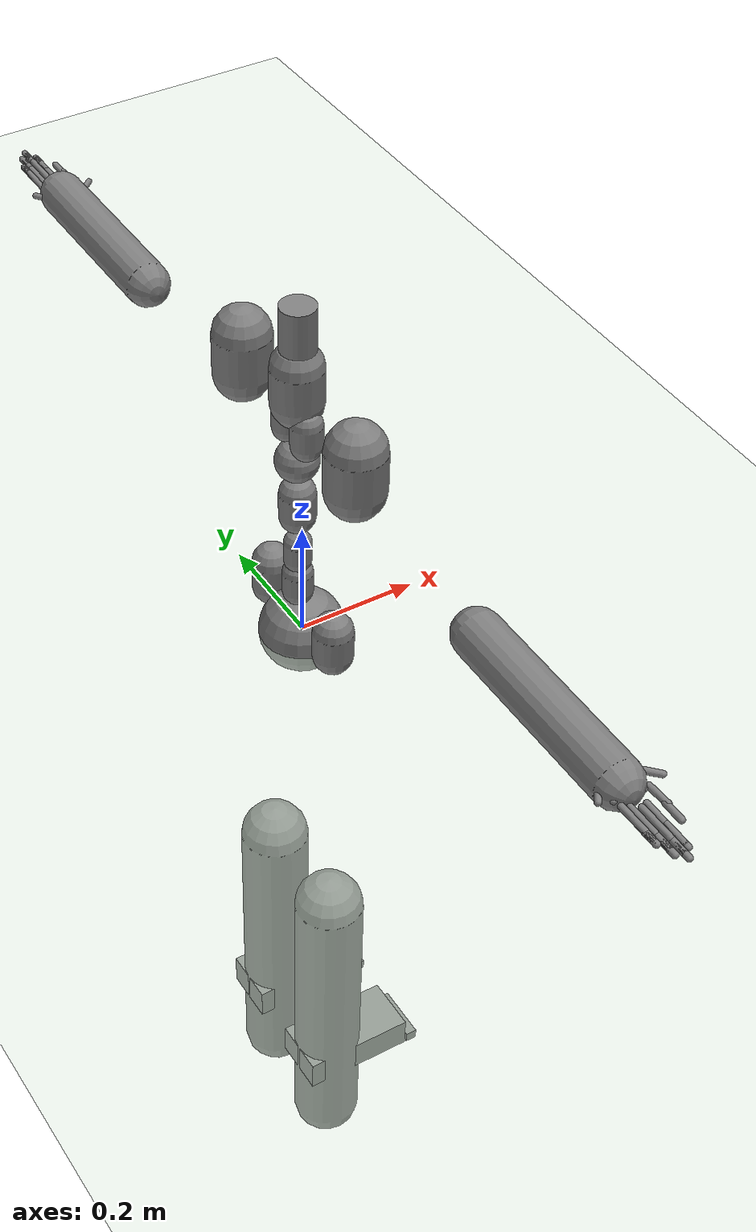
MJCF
<?xml version="1.0" ?>
<mujoco model="humanoid">
  <compiler coordinate="local"/>
  <statistic extent="2" center="0 0 1"/>
  <option timestep="0.00555"/>
  <default>
    <motor ctrlrange="-1 1" ctrllimited="true"/>
    <geom type="capsule" condim="1" friction="1.0 0.05 0.05" solimp=".9 .99 .003" solref=".015 1"/>
    <joint type="hinge" damping="0.1" stiffness="5" armature=".007" limited="true" solimplimit="0 .99 .01"/>
    <site size=".04" group="3"/>
  </default>
  <asset>
    <texture type="skybox" builtin="gradient" rgb1=".4 .5 .6" rgb2="0 0 0" width="100" height="100"/>
    <texture builtin="flat" height="1278" mark="cross" markrgb="1 1 1" name="texgeom" random="0.01" rgb1="0.8 0.6 0.4" rgb2="0.8 0.6 0.4" type="cube" width="127"/>
    <texture builtin="checker" height="100" name="texplane" rgb1="0 0 0" rgb2="0.8 0.8 0.8" type="2d" width="100"/>
    <material name="MatPlane" reflectance="0.5" shininess="1" specular="1" texrepeat="60 60" texture="texplane"/>
    <material name="geom" texture="texgeom" texuniform="true"/>
  </asset>
  <worldbody>
    <light cutoff="100" diffuse="1 1 1" dir="-0 0 -1.3" directional="true" exponent="1" pos="0 0 1.3" specular=".1 .1 .1"/>
    <geom conaffinity="1" condim="3" name="floor" pos="0 0 0" rgba="0.8 0.9 0.8 1" size="100 100 .2" type="plane" material="MatPlane"/>
    <body name="pHipOrigin" pos="0 0 0">
      <freejoint name="pHipOrigin"/>
      <geom type="sphere" contype="1" conaffinity="1" density="4629.6296296296305" size="0.06922" pos="0.0000 0.0000 -0.0000"/>
      <body name="jL5S1" pos="-0.00780013 0 0.07020100">
        <geom type="capsule" contype="1" conaffinity="1" density="1000" fromto="0 0 0.01413 0 0 0.04944" size="0.02472"/>
        <joint name="jL5S1_x" type="hinge" pos="0 0 0" axis="1 0 0" stiffness="500" damping="500" armature="0.02" range="-180.0000 180.0000"/>
        <joint name="jL5S1_y" type="hinge" pos="0 0 0" axis="0 1 0" stiffness="500" damping="500" armature="0.02" range="-180.0000 180.0000"/>
        <joint name="jL5S1_z" type="hinge" pos="0 0 0" axis="0 0 1" stiffness="500" damping="500" armature="0.02" range="-180.0000 180.0000"/>
        <body name="jL4L3" pos="0 0 0.06388980">
          <geom type="capsule" contype="1" conaffinity="1" density="1000" fromto="0 0 0.01278 0 0 0.04472" size="0.02236"/>
          <joint name="jL4L3_x" type="hinge" pos="0 0 0" axis="1 0 0" stiffness="500" damping="500" armature="0.02" range="-180.0000 180.0000"/>
          <joint name="jL4L3_y" type="hinge" pos="0 0 0" axis="0 1 0" stiffness="500" damping="500" armature="0.02" range="-180.0000 180.0000"/>
          <joint name="jL4L3_z" type="hinge" pos="0 0 0" axis="0 0 1" stiffness="500" damping="500" armature="0.02" range="-180.0000 180.0000"/>
          <body name="jL1T12" pos="-0.00063881 0 0.08280111">
            <geom type="capsule" contype="1" conaffinity="1" density="1000" fromto="0 0 0.01656 0 0 0.05796" size="0.02898"/>
            <joint name="jL1T12_x" type="hinge" pos="0 0 0" axis="1 0 0" stiffness="500" damping="500" armature="0.02" range="-180.0000 180.0000"/>
            <joint name="jL1T12_y" type="hinge" pos="0 0 0" axis="0 1 0" stiffness="500" damping="500" armature="0.02" range="-180.0000 180.0000"/>
            <joint name="jL1T12_z" type="hinge" pos="0 0 0" axis="0 0 1" stiffness="500" damping="500" armature="0.02" range="-180.0000 180.0000"/>
            <body name="jT9T8" pos="-0.00066638 0 0.08620707">
              <geom type="sphere" contype="1" conaffinity="1" density="1000" size="0.03448" pos="0.000 0.0000 0.034484"/>
              <joint name="jT9T8_x" type="hinge" pos="0 0 0" axis="1 0 0" stiffness="500" damping="500" armature="0.02" range="-180.0000 180.0000"/>
              <joint name="jT9T8_y" type="hinge" pos="0 0 0" axis="0 1 0" stiffness="500" damping="500" armature="0.02" range="-180.0000 180.0000"/>
              <joint name="jT9T8_z" type="hinge" pos="0 0 0" axis="0 0 1" stiffness="500" damping="500" armature="0.02" range="-180.0000 180.0000"/>
              <body name="jT1C7" pos="0 0 0.11753398">
                <geom type="capsule" contype="1" conaffinity="1" density="1000" fromto="0 0 0.02351 0 0 0.08227" size="0.04114"/>
                <joint name="jT1C7_x" type="hinge" pos="0 0 0" axis="1 0 0" stiffness="500" damping="500" armature="0.02" range="-180.0000 180.0000"/>
                <joint name="jT1C7_y" type="hinge" pos="0 0 0" axis="0 1 0" stiffness="500" damping="500" armature="0.02" range="-180.0000 180.0000"/>
                <joint name="jT1C7_z" type="hinge" pos="0 0 0" axis="0 0 1" stiffness="500" damping="500" armature="0.02" range="-180.0000 180.0000"/>
                <body name="jC1Head" pos="0.00109452 0 0.09277466">
                  <geom type="cylinder" contype="1" conaffinity="1" density="1000" fromto="0 0 0 0 0 0.09278" size="0.02783"/>
                  <joint name="jC1Head_x" type="hinge" pos="0 0 0" axis="1 0 0" stiffness="500" damping="500" armature="0.02" range="-180.0000 180.0000"/>
                  <joint name="jC1Head_y" type="hinge" pos="0 0 0" axis="0 1 0" stiffness="500" damping="500" armature="0.02" range="-180.0000 180.0000"/>
                  <joint name="jC1Head_z" type="hinge" pos="0 0 0" axis="0 0 1" stiffness="500" damping="500" armature="0.02" range="-180.0000 180.0000"/>
                </body>
              </body>
              <body name="jRightT4Shoulder" pos="0 -0.02712158 0.06612837">
                <geom type="capsule" contype="1" conaffinity="1" density="1000" fromto="0 0 0.01429 0 0 0.05003" size="0.02502"/>
                <joint name="jRightT4Shoulder_x" type="hinge" pos="0 0 0" axis="1 0 0" stiffness="500" damping="500" armature="0.02" range="-180.0000 180.0000"/>
                <joint name="jRightT4Shoulder_y" type="hinge" pos="0 0 0" axis="0 1 0" stiffness="500" damping="500" armature="0.02" range="-180.0000 180.0000"/>
                <joint name="jRightT4Shoulder_z" type="hinge" pos="0 0 0" axis="0 0 1" stiffness="500" damping="500" armature="0.02" range="-180.0000 180.0000"/>
                <body name="jRightShoulder" pos="0 -0.13383517 0">
                  <geom type="capsule" contype="1" conaffinity="1" density="1000" fromto="0 0 0.02677 0 0 0.09368" size="0.04684"/>
                  <joint name="jRightShoulder_x" type="hinge" pos="0 0 0" axis="1 0 0" stiffness="500" damping="500" armature="0.02" range="-180.0000 180.0000"/>
                  <joint name="jRightShoulder_y" type="hinge" pos="0 0 0" axis="0 1 0" stiffness="500" damping="500" armature="0.02" range="-180.0000 180.0000"/>
                  <joint name="jRightShoulder_z" type="hinge" pos="0 0 0" axis="0 0 1" stiffness="500" damping="500" armature="0.02" range="-180.0000 180.0000"/>
                  <body name="jRightElbow" pos="0 -0.30855584 0">
                    <geom type="capsule" contype="1" conaffinity="1" density="1000" fromto="0 0 0 0.00000000 -0.30855584 0.00000000" size="0.03703"/>
                    <joint name="jRightElbow_x" type="hinge" pos="0 0 0" axis="1 0 0" stiffness="500" damping="500" armature="0.02" range="-180.0000 180.0000"/>
                    <joint name="jRightElbow_y" type="hinge" pos="0 0 0" axis="0 1 0" stiffness="500" damping="500" armature="0.02" range="-180.0000 180.0000"/>
                    <joint name="jRightElbow_z" type="hinge" pos="0 0 0" axis="0 0 1" stiffness="500" damping="500" armature="0.02" range="-180.0000 180.0000"/>
                    <body name="jRightWrist" pos="0.00010793 -0.26817301 0">
                      <geom density="1000" type="box" pos="0 0 0" size="0.035 0.03 0.01" quat="1.0000 0.0000 0.0000 0.0000"/>
                      <joint name="jRightWrist_x" type="hinge" pos="0 0 0" axis="1 0 0" stiffness="500" damping="500" armature="0.02" range="-180.0000 180.0000"/>
                      <joint name="jRightWrist_y" type="hinge" pos="0 0 0" axis="0 1 0" stiffness="500" damping="500" armature="0.02" range="-180.0000 180.0000"/>
                      <joint name="jRightWrist_z" type="hinge" pos="0 0 0" axis="0 0 1" stiffness="500" damping="500" armature="0.02" range="-180.0000 180.0000"/>
                      <body name="jRightFirstCMC" pos="0.02927731 -0.02806394 -0.00132586">
                        <geom type="capsule" contype="1" conaffinity="1" density="1000" fromto="0 0 0 0.02927731 -0.02806394 -0.00132586" size="0.005"/>
                        <joint name="jRightFirstCMC_x" type="hinge" pos="0 0 0" axis="1 0 0" stiffness="500" damping="500" armature="0.02" range="-180.0000 180.0000"/>
                        <joint name="jRightFirstCMC_y" type="hinge" pos="0 0 0" axis="0 1 0" stiffness="500" damping="500" armature="0.02" range="-180.0000 180.0000"/>
                        <joint name="jRightFirstCMC_z" type="hinge" pos="0 0 0" axis="0 0 1" stiffness="500" damping="500" armature="0.02" range="-180.0000 180.0000"/>
                        <body name="jRightFirstMCP" pos="0.00130909 -0.03694161 0.00078057">
                          <geom type="capsule" contype="1" conaffinity="1" density="1000" fromto="0 0 0 0.00130909 -0.03694161 0.00078057" size="0.005"/>
                          <joint name="jRightFirstMCP_x" type="hinge" pos="0 0 0" axis="1 0 0" stiffness="500" damping="500" armature="0.02" range="-180.0000 180.0000"/>
                          <joint name="jRightFirstMCP_y" type="hinge" pos="0 0 0" axis="0 1 0" stiffness="500" damping="500" armature="0.02" range="-180.0000 180.0000"/>
                          <joint name="jRightFirstMCP_z" type="hinge" pos="0 0 0" axis="0 0 1" stiffness="500" damping="500" armature="0.02" range="-180.0000 180.0000"/>
                          <body name="jRightIP" pos="0 -0.03251442 0">
                            <geom type="capsule" contype="1" conaffinity="1" density="1000" fromto="0 0 0 0.00000000 -0.03251442 0.00000000" size="0.005"/>
                            <joint name="jRightIP_x" type="hinge" pos="0 0 0" axis="1 0 0" stiffness="500" damping="500" armature="0.02" range="-180.0000 180.0000"/>
                            <joint name="jRightIP_y" type="hinge" pos="0 0 0" axis="0 1 0" stiffness="500" damping="500" armature="0.02" range="-180.0000 180.0000"/>
                            <joint name="jRightIP_z" type="hinge" pos="0 0 0" axis="0 0 1" stiffness="500" damping="500" armature="0.02" range="-180.0000 180.0000"/>
                          </body>
                        </body>
                      </body>
                      <body name="jRightSecondCMC" pos="0.01114787 -0.03257055 -0.00056811">
                        <geom type="capsule" contype="1" conaffinity="1" density="1000" fromto="0 0 0 0.01114787 -0.03257055 -0.00056811" size="0.005"/>
                        <joint name="jRightSecondCMC_x" type="hinge" pos="0 0 0" axis="1 0 0" stiffness="500" damping="500" armature="0.02" range="-180.0000 180.0000"/>
                        <joint name="jRightSecondCMC_y" type="hinge" pos="0 0 0" axis="0 1 0" stiffness="500" damping="500" armature="0.02" range="-180.0000 180.0000"/>
                        <joint name="jRightSecondCMC_z" type="hinge" pos="0 0 0" axis="0 0 1" stiffness="500" damping="500" armature="0.02" range="-180.0000 180.0000"/>
                        <body name="jRightSecondMCP" pos="-0.00033952 -0.05415028 -0.00056172">
                          <geom type="capsule" contype="1" conaffinity="1" density="1000" fromto="0 0 0 -0.00033952 -0.05415028 -0.00056172" size="0.005"/>
                          <joint name="jRightSecondMCP_x" type="hinge" pos="0 0 0" axis="1 0 0" stiffness="500" damping="500" armature="0.02" range="-180.0000 180.0000"/>
                          <joint name="jRightSecondMCP_y" type="hinge" pos="0 0 0" axis="0 1 0" stiffness="500" damping="500" armature="0.02" range="-180.0000 180.0000"/>
                          <joint name="jRightSecondMCP_z" type="hinge" pos="0 0 0" axis="0 0 1" stiffness="500" damping="500" armature="0.02" range="-180.0000 180.0000"/>
                          <body name="jRightSecondPIP" pos="0 -0.03915551 0">
                            <geom type="capsule" contype="1" conaffinity="1" density="1000" fromto="0 0 0 0.00000000 -0.03915551 0.00000000" size="0.005"/>
                            <joint name="jRightSecondPIP_x" type="hinge" pos="0 0 0" axis="1 0 0" stiffness="500" damping="500" armature="0.02" range="-180.0000 180.0000"/>
                            <joint name="jRightSecondPIP_y" type="hinge" pos="0 0 0" axis="0 1 0" stiffness="500" damping="500" armature="0.02" range="-180.0000 180.0000"/>
                            <joint name="jRightSecondPIP_z" type="hinge" pos="0 0 0" axis="0 0 1" stiffness="500" damping="500" armature="0.02" range="-180.0000 180.0000"/>
                            <body name="jRightSecondDIP" pos="0 -0.02137059 0">
                              <geom type="capsule" contype="1" conaffinity="1" density="1000" fromto="0 0 0 0.00000000 -0.02137059 0.00000000" size="0.005"/>
                              <joint name="jRightSecondDIP_x" type="hinge" pos="0 0 0" axis="1 0 0" stiffness="500" damping="500" armature="0.02" range="-180.0000 180.0000"/>
                              <joint name="jRightSecondDIP_y" type="hinge" pos="0 0 0" axis="0 1 0" stiffness="500" damping="500" armature="0.02" range="-180.0000 180.0000"/>
                              <joint name="jRightSecondDIP_z" type="hinge" pos="0 0 0" axis="0 0 1" stiffness="500" damping="500" armature="0.02" range="-180.0000 180.0000"/>
                            </body>
                          </body>
                        </body>
                      </body>
                      <body name="jRightThirdCMC" pos="-0.00063303 -0.03423302 0.00143921">
                        <geom type="capsule" contype="1" conaffinity="1" density="1000" fromto="0 0 0 -0.00063303 -0.03423302 0.00143921" size="0.005"/>
                        <joint name="jRightThirdCMC_x" type="hinge" pos="0 0 0" axis="1 0 0" stiffness="500" damping="500" armature="0.02" range="-180.0000 180.0000"/>
                        <joint name="jRightThirdCMC_y" type="hinge" pos="0 0 0" axis="0 1 0" stiffness="500" damping="500" armature="0.02" range="-180.0000 180.0000"/>
                        <joint name="jRightThirdCMC_z" type="hinge" pos="0 0 0" axis="0 0 1" stiffness="500" damping="500" armature="0.02" range="-180.0000 180.0000"/>
                        <body name="jRightThirdMCP" pos="-0.00069765 -0.05780011 0.00157252">
                          <geom type="capsule" contype="1" conaffinity="1" density="1000" fromto="0 0 0 -0.00069765 -0.05780011 0.00157252" size="0.005"/>
                          <joint name="jRightThirdMCP_x" type="hinge" pos="0 0 0" axis="1 0 0" stiffness="500" damping="500" armature="0.02" range="-180.0000 180.0000"/>
                          <joint name="jRightThirdMCP_y" type="hinge" pos="0 0 0" axis="0 1 0" stiffness="500" damping="500" armature="0.02" range="-180.0000 180.0000"/>
                          <joint name="jRightThirdMCP_z" type="hinge" pos="0 0 0" axis="0 0 1" stiffness="500" damping="500" armature="0.02" range="-180.0000 180.0000"/>
                          <body name="jRightThirdPIP" pos="0 -0.04292496 0">
                            <geom type="capsule" contype="1" conaffinity="1" density="1000" fromto="0 0 0 0.00000000 -0.04292496 0.00000000" size="0.005"/>
                            <joint name="jRightThirdPIP_x" type="hinge" pos="0 0 0" axis="1 0 0" stiffness="500" damping="500" armature="0.02" range="-180.0000 180.0000"/>
                            <joint name="jRightThirdPIP_y" type="hinge" pos="0 0 0" axis="0 1 0" stiffness="500" damping="500" armature="0.02" range="-180.0000 180.0000"/>
                            <joint name="jRightThirdPIP_z" type="hinge" pos="0 0 0" axis="0 0 1" stiffness="500" damping="500" armature="0.02" range="-180.0000 180.0000"/>
                            <body name="jRightThirdDIP" pos="0 -0.02522658 0">
                              <geom type="capsule" contype="1" conaffinity="1" density="1000" fromto="0 0 0 0.00000000 -0.02522658 0.00000000" size="0.005"/>
                              <joint name="jRightThirdDIP_x" type="hinge" pos="0 0 0" axis="1 0 0" stiffness="500" damping="500" armature="0.02" range="-180.0000 180.0000"/>
                              <joint name="jRightThirdDIP_y" type="hinge" pos="0 0 0" axis="0 1 0" stiffness="500" damping="500" armature="0.02" range="-180.0000 180.0000"/>
                              <joint name="jRightThirdDIP_z" type="hinge" pos="0 0 0" axis="0 0 1" stiffness="500" damping="500" armature="0.02" range="-180.0000 180.0000"/>
                            </body>
                          </body>
                        </body>
                      </body>
                      <body name="jRightFourthCMC" pos="-0.01163399 -0.03240258 0.00076271">
                        <geom type="capsule" contype="1" conaffinity="1" density="1000" fromto="0 0 0 -0.01163399 -0.03240258 0.00076271" size="0.005"/>
                        <joint name="jRightFourthCMC_x" type="hinge" pos="0 0 0" axis="1 0 0" stiffness="500" damping="500" armature="0.02" range="-180.0000 180.0000"/>
                        <joint name="jRightFourthCMC_y" type="hinge" pos="0 0 0" axis="0 1 0" stiffness="500" damping="500" armature="0.02" range="-180.0000 180.0000"/>
                        <joint name="jRightFourthCMC_z" type="hinge" pos="0 0 0" axis="0 0 1" stiffness="500" damping="500" armature="0.02" range="-180.0000 180.0000"/>
                        <body name="jRightFourthMCP" pos="-0.00037114 -0.05086904 0.00079919">
                          <geom type="capsule" contype="1" conaffinity="1" density="1000" fromto="0 0 0 -0.00037114 -0.05086904 0.00079919" size="0.005"/>
                          <joint name="jRightFourthMCP_x" type="hinge" pos="0 0 0" axis="1 0 0" stiffness="500" damping="500" armature="0.02" range="-180.0000 180.0000"/>
                          <joint name="jRightFourthMCP_y" type="hinge" pos="0 0 0" axis="0 1 0" stiffness="500" damping="500" armature="0.02" range="-180.0000 180.0000"/>
                          <joint name="jRightFourthMCP_z" type="hinge" pos="0 0 0" axis="0 0 1" stiffness="500" damping="500" armature="0.02" range="-180.0000 180.0000"/>
                          <body name="jRightFourthPIP" pos="0 -0.04062925 0">
                            <geom type="capsule" contype="1" conaffinity="1" density="1000" fromto="0 0 0 0.00000000 -0.04062925 0.00000000" size="0.005"/>
                            <joint name="jRightFourthPIP_x" type="hinge" pos="0 0 0" axis="1 0 0" stiffness="500" damping="500" armature="0.02" range="-180.0000 180.0000"/>
                            <joint name="jRightFourthPIP_y" type="hinge" pos="0 0 0" axis="0 1 0" stiffness="500" damping="500" armature="0.02" range="-180.0000 180.0000"/>
                            <joint name="jRightFourthPIP_z" type="hinge" pos="0 0 0" axis="0 0 1" stiffness="500" damping="500" armature="0.02" range="-180.0000 180.0000"/>
                            <body name="jRightFourthDIP" pos="0 -0.02411579 0">
                              <geom type="capsule" contype="1" conaffinity="1" density="1000" fromto="0 0 0 0.00000000 -0.02411579 0.00000000" size="0.005"/>
                              <joint name="jRightFourthDIP_x" type="hinge" pos="0 0 0" axis="1 0 0" stiffness="500" damping="500" armature="0.02" range="-180.0000 180.0000"/>
                              <joint name="jRightFourthDIP_y" type="hinge" pos="0 0 0" axis="0 1 0" stiffness="500" damping="500" armature="0.02" range="-180.0000 180.0000"/>
                              <joint name="jRightFourthDIP_z" type="hinge" pos="0 0 0" axis="0 0 1" stiffness="500" damping="500" armature="0.02" range="-180.0000 180.0000"/>
                            </body>
                          </body>
                        </body>
                      </body>
                      <body name="jRightFifthCMC" pos="-0.02044995 -0.02849467 0.00056211">
                        <geom type="capsule" contype="1" conaffinity="1" density="1000" fromto="0 0 0 -0.02044995 -0.02849467 0.00056211" size="0.005"/>
                        <joint name="jRightFifthCMC_x" type="hinge" pos="0 0 0" axis="1 0 0" stiffness="500" damping="500" armature="0.02" range="-180.0000 180.0000"/>
                        <joint name="jRightFifthCMC_y" type="hinge" pos="0 0 0" axis="0 1 0" stiffness="500" damping="500" armature="0.02" range="-180.0000 180.0000"/>
                        <joint name="jRightFifthCMC_z" type="hinge" pos="0 0 0" axis="0 0 1" stiffness="500" damping="500" armature="0.02" range="-180.0000 180.0000"/>
                        <body name="jRightFifthMCP" pos="-0.00000714 -0.04834211 0.00066525">
                          <geom type="capsule" contype="1" conaffinity="1" density="1000" fromto="0 0 0 -0.00000714 -0.04834211 0.00066525" size="0.005"/>
                          <joint name="jRightFifthMCP_x" type="hinge" pos="0 0 0" axis="1 0 0" stiffness="500" damping="500" armature="0.02" range="-180.0000 180.0000"/>
                          <joint name="jRightFifthMCP_y" type="hinge" pos="0 0 0" axis="0 1 0" stiffness="500" damping="500" armature="0.02" range="-180.0000 180.0000"/>
                          <joint name="jRightFifthMCP_z" type="hinge" pos="0 0 0" axis="0 0 1" stiffness="500" damping="500" armature="0.02" range="-180.0000 180.0000"/>
                          <body name="jRightFifthPIP" pos="0 -0.03394297 0">
                            <geom type="capsule" contype="1" conaffinity="1" density="1000" fromto="0 0 0 0.00000000 -0.03394297 0.00000000" size="0.005"/>
                            <joint name="jRightFifthPIP_x" type="hinge" pos="0 0 0" axis="1 0 0" stiffness="500" damping="500" armature="0.02" range="-180.0000 180.0000"/>
                            <joint name="jRightFifthPIP_y" type="hinge" pos="0 0 0" axis="0 1 0" stiffness="500" damping="500" armature="0.02" range="-180.0000 180.0000"/>
                            <joint name="jRightFifthPIP_z" type="hinge" pos="0 0 0" axis="0 0 1" stiffness="500" damping="500" armature="0.02" range="-180.0000 180.0000"/>
                            <body name="jRightFifthDIP" pos="0 -0.01842354 0">
                              <geom type="capsule" contype="1" conaffinity="1" density="1000" fromto="0 0 0 0.00000000 -0.01842354 0.00000000" size="0.005"/>
                              <joint name="jRightFifthDIP_x" type="hinge" pos="0 0 0" axis="1 0 0" stiffness="500" damping="500" armature="0.02" range="-180.0000 180.0000"/>
                              <joint name="jRightFifthDIP_y" type="hinge" pos="0 0 0" axis="0 1 0" stiffness="500" damping="500" armature="0.02" range="-180.0000 180.0000"/>
                              <joint name="jRightFifthDIP_z" type="hinge" pos="0 0 0" axis="0 0 1" stiffness="500" damping="500" armature="0.02" range="-180.0000 180.0000"/>
                            </body>
                          </body>
                        </body>
                      </body>
                    </body>
                  </body>
                </body>
              </body>
              <body name="jLeftT4Shoulder" pos="0 0.02702215 0.06588593">
                <geom type="capsule" contype="1" conaffinity="1" density="1000" fromto="0 0 0.01424 0 0 0.04985" size="0.02492"/>
                <joint name="jLeftT4Shoulder_x" type="hinge" pos="0 0 0" axis="1 0 0" stiffness="500" damping="500" armature="0.02" range="-180.0000 180.0000"/>
                <joint name="jLeftT4Shoulder_y" type="hinge" pos="0 0 0" axis="0 1 0" stiffness="500" damping="500" armature="0.02" range="-180.0000 180.0000"/>
                <joint name="jLeftT4Shoulder_z" type="hinge" pos="0 0 0" axis="0 0 1" stiffness="500" damping="500" armature="0.02" range="-180.0000 180.0000"/>
                <body name="jLeftShoulder" pos="0 0.13353685 0">
                  <geom type="capsule" contype="1" conaffinity="1" density="1000" fromto="0 0 0.02671 0 0 0.09348" size="0.04674"/>
                  <joint name="jLeftShoulder_x" type="hinge" pos="0 0 0" axis="1 0 0" stiffness="500" damping="500" armature="0.02" range="-180.0000 180.0000"/>
                  <joint name="jLeftShoulder_y" type="hinge" pos="0 0 0" axis="0 1 0" stiffness="500" damping="500" armature="0.02" range="-180.0000 180.0000"/>
                  <joint name="jLeftShoulder_z" type="hinge" pos="0 0 0" axis="0 0 1" stiffness="500" damping="500" armature="0.02" range="-180.0000 180.0000"/>
                  <body name="jLeftElbow" pos="0 0.30876601 0">
                    <geom type="capsule" contype="1" conaffinity="1" density="1000" fromto="0 0 0 0.00000000 0.30876601 0.00000000" size="0.03705"/>
                    <joint name="jLeftElbow_x" type="hinge" pos="0 0 0" axis="1 0 0" stiffness="500" damping="500" armature="0.02" range="-180.0000 180.0000"/>
                    <joint name="jLeftElbow_y" type="hinge" pos="0 0 0" axis="0 1 0" stiffness="500" damping="500" armature="0.02" range="-180.0000 180.0000"/>
                    <joint name="jLeftElbow_z" type="hinge" pos="0 0 0" axis="0 0 1" stiffness="500" damping="500" armature="0.02" range="-180.0000 180.0000"/>
                    <body name="jLeftWrist" pos="0.00010764 0.26744217 0">
                      <geom density="1000" type="box" pos="0 0 0" size="0.035 0.03 0.01" quat="1.0000 0.0000 0.0000 0.0000"/>
                      <joint name="jLeftWrist_x" type="hinge" pos="0 0 0" axis="1 0 0" stiffness="500" damping="500" armature="0.02" range="-180.0000 180.0000"/>
                      <joint name="jLeftWrist_y" type="hinge" pos="0 0 0" axis="0 1 0" stiffness="500" damping="500" armature="0.02" range="-180.0000 180.0000"/>
                      <joint name="jLeftWrist_z" type="hinge" pos="0 0 0" axis="0 0 1" stiffness="500" damping="500" armature="0.02" range="-180.0000 180.0000"/>
                      <body name="jLeftFirstCMC" pos="0.02865559 0.02872326 -0.00128253">
                        <geom type="capsule" contype="1" conaffinity="1" density="1000" fromto="0 0 0 0.02865559 0.02872326 -0.00128253" size="0.005"/>
                        <joint name="jLeftFirstCMC_x" type="hinge" pos="0 0 0" axis="1 0 0" stiffness="500" damping="500" armature="0.02" range="-180.0000 180.0000"/>
                        <joint name="jLeftFirstCMC_y" type="hinge" pos="0 0 0" axis="0 1 0" stiffness="500" damping="500" armature="0.02" range="-180.0000 180.0000"/>
                        <joint name="jLeftFirstCMC_z" type="hinge" pos="0 0 0" axis="0 0 1" stiffness="500" damping="500" armature="0.02" range="-180.0000 180.0000"/>
                        <body name="jLeftFirstMCP" pos="0.00129648 0.03694078 0.00076070">
                          <geom type="capsule" contype="1" conaffinity="1" density="1000" fromto="0 0 0 0.00129648 0.03694078 0.00076070" size="0.005"/>
                          <joint name="jLeftFirstMCP_x" type="hinge" pos="0 0 0" axis="1 0 0" stiffness="500" damping="500" armature="0.02" range="-180.0000 180.0000"/>
                          <joint name="jLeftFirstMCP_y" type="hinge" pos="0 0 0" axis="0 1 0" stiffness="500" damping="500" armature="0.02" range="-180.0000 180.0000"/>
                          <joint name="jLeftFirstMCP_z" type="hinge" pos="0 0 0" axis="0 0 1" stiffness="500" damping="500" armature="0.02" range="-180.0000 180.0000"/>
                          <body name="jLeftIP" pos="0 0.03251442 0">
                            <geom type="capsule" contype="1" conaffinity="1" density="1000" fromto="0 0 0 0.00000000 0.03251442 0.00000000" size="0.005"/>
                            <joint name="jLeftIP_x" type="hinge" pos="0 0 0" axis="1 0 0" stiffness="500" damping="500" armature="0.02" range="-180.0000 180.0000"/>
                            <joint name="jLeftIP_y" type="hinge" pos="0 0 0" axis="0 1 0" stiffness="500" damping="500" armature="0.02" range="-180.0000 180.0000"/>
                            <joint name="jLeftIP_z" type="hinge" pos="0 0 0" axis="0 0 1" stiffness="500" damping="500" armature="0.02" range="-180.0000 180.0000"/>
                          </body>
                        </body>
                      </body>
                      <body name="jLeftSecondCMC" pos="0.01127628 0.03251062 -0.00057280">
                        <geom type="capsule" contype="1" conaffinity="1" density="1000" fromto="0 0 0 0.01127628 0.03251062 -0.00057280" size="0.005"/>
                        <joint name="jLeftSecondCMC_x" type="hinge" pos="0 0 0" axis="1 0 0" stiffness="500" damping="500" armature="0.02" range="-180.0000 180.0000"/>
                        <joint name="jLeftSecondCMC_y" type="hinge" pos="0 0 0" axis="0 1 0" stiffness="500" damping="500" armature="0.02" range="-180.0000 180.0000"/>
                        <joint name="jLeftSecondCMC_z" type="hinge" pos="0 0 0" axis="0 0 1" stiffness="500" damping="500" armature="0.02" range="-180.0000 180.0000"/>
                        <body name="jLeftSecondMCP" pos="-0.00029604 0.05415140 -0.00056866">
                          <geom type="capsule" contype="1" conaffinity="1" density="1000" fromto="0 0 0 -0.00029604 0.05415140 -0.00056866" size="0.005"/>
                          <joint name="jLeftSecondMCP_x" type="hinge" pos="0 0 0" axis="1 0 0" stiffness="500" damping="500" armature="0.02" range="-180.0000 180.0000"/>
                          <joint name="jLeftSecondMCP_y" type="hinge" pos="0 0 0" axis="0 1 0" stiffness="500" damping="500" armature="0.02" range="-180.0000 180.0000"/>
                          <joint name="jLeftSecondMCP_z" type="hinge" pos="0 0 0" axis="0 0 1" stiffness="500" damping="500" armature="0.02" range="-180.0000 180.0000"/>
                          <body name="jLeftSecondPIP" pos="0 0.03915551 0">
                            <geom type="capsule" contype="1" conaffinity="1" density="1000" fromto="0 0 0 0.00000000 0.03915551 0.00000000" size="0.005"/>
                            <joint name="jLeftSecondPIP_x" type="hinge" pos="0 0 0" axis="1 0 0" stiffness="500" damping="500" armature="0.02" range="-180.0000 180.0000"/>
                            <joint name="jLeftSecondPIP_y" type="hinge" pos="0 0 0" axis="0 1 0" stiffness="500" damping="500" armature="0.02" range="-180.0000 180.0000"/>
                            <joint name="jLeftSecondPIP_z" type="hinge" pos="0 0 0" axis="0 0 1" stiffness="500" damping="500" armature="0.02" range="-180.0000 180.0000"/>
                            <body name="jLeftSecondDIP" pos="0 0.02137059 0">
                              <geom type="capsule" contype="1" conaffinity="1" density="1000" fromto="0 0 0 0.00000000 0.02137059 0.00000000" size="0.005"/>
                              <joint name="jLeftSecondDIP_x" type="hinge" pos="0 0 0" axis="1 0 0" stiffness="500" damping="500" armature="0.02" range="-180.0000 180.0000"/>
                              <joint name="jLeftSecondDIP_y" type="hinge" pos="0 0 0" axis="0 1 0" stiffness="500" damping="500" armature="0.02" range="-180.0000 180.0000"/>
                              <joint name="jLeftSecondDIP_z" type="hinge" pos="0 0 0" axis="0 0 1" stiffness="500" damping="500" armature="0.02" range="-180.0000 180.0000"/>
                            </body>
                          </body>
                        </body>
                      </body>
                      <body name="jLeftThirdCMC" pos="-0.00063675 0.03423610 0.00139123">
                        <geom type="capsule" contype="1" conaffinity="1" density="1000" fromto="0 0 0 -0.00063675 0.03423610 0.00139123" size="0.005"/>
                        <joint name="jLeftThirdCMC_x" type="hinge" pos="0 0 0" axis="1 0 0" stiffness="500" damping="500" armature="0.02" range="-180.0000 180.0000"/>
                        <joint name="jLeftThirdCMC_y" type="hinge" pos="0 0 0" axis="0 1 0" stiffness="500" damping="500" armature="0.02" range="-180.0000 180.0000"/>
                        <joint name="jLeftThirdCMC_z" type="hinge" pos="0 0 0" axis="0 0 1" stiffness="500" damping="500" armature="0.02" range="-180.0000 180.0000"/>
                        <body name="jLeftThirdMCP" pos="-0.00070328 0.05780124 0.00154091">
                          <geom type="capsule" contype="1" conaffinity="1" density="1000" fromto="0 0 0 -0.00070328 0.05780124 0.00154091" size="0.005"/>
                          <joint name="jLeftThirdMCP_x" type="hinge" pos="0 0 0" axis="1 0 0" stiffness="500" damping="500" armature="0.02" range="-180.0000 180.0000"/>
                          <joint name="jLeftThirdMCP_y" type="hinge" pos="0 0 0" axis="0 1 0" stiffness="500" damping="500" armature="0.02" range="-180.0000 180.0000"/>
                          <joint name="jLeftThirdMCP_z" type="hinge" pos="0 0 0" axis="0 0 1" stiffness="500" damping="500" armature="0.02" range="-180.0000 180.0000"/>
                          <body name="jLeftThirdPIP" pos="0 0.04292496 0">
                            <geom type="capsule" contype="1" conaffinity="1" density="1000" fromto="0 0 0 0.00000000 0.04292496 0.00000000" size="0.005"/>
                            <joint name="jLeftThirdPIP_x" type="hinge" pos="0 0 0" axis="1 0 0" stiffness="500" damping="500" armature="0.02" range="-180.0000 180.0000"/>
                            <joint name="jLeftThirdPIP_y" type="hinge" pos="0 0 0" axis="0 1 0" stiffness="500" damping="500" armature="0.02" range="-180.0000 180.0000"/>
                            <joint name="jLeftThirdPIP_z" type="hinge" pos="0 0 0" axis="0 0 1" stiffness="500" damping="500" armature="0.02" range="-180.0000 180.0000"/>
                            <body name="jLeftThirdDIP" pos="0 0.02522658 0">
                              <geom type="capsule" contype="1" conaffinity="1" density="1000" fromto="0 0 0 0.00000000 0.02522658 0.00000000" size="0.005"/>
                              <joint name="jLeftThirdDIP_x" type="hinge" pos="0 0 0" axis="1 0 0" stiffness="500" damping="500" armature="0.02" range="-180.0000 180.0000"/>
                              <joint name="jLeftThirdDIP_y" type="hinge" pos="0 0 0" axis="0 1 0" stiffness="500" damping="500" armature="0.02" range="-180.0000 180.0000"/>
                              <joint name="jLeftThirdDIP_z" type="hinge" pos="0 0 0" axis="0 0 1" stiffness="500" damping="500" armature="0.02" range="-180.0000 180.0000"/>
                            </body>
                          </body>
                        </body>
                      </body>
                      <body name="jLeftFourthCMC" pos="-0.01206088 0.03223683 0.00081418">
                        <geom type="capsule" contype="1" conaffinity="1" density="1000" fromto="0 0 0 -0.01206088 0.03223683 0.00081418" size="0.005"/>
                        <joint name="jLeftFourthCMC_x" type="hinge" pos="0 0 0" axis="1 0 0" stiffness="500" damping="500" armature="0.02" range="-180.0000 180.0000"/>
                        <joint name="jLeftFourthCMC_y" type="hinge" pos="0 0 0" axis="0 1 0" stiffness="500" damping="500" armature="0.02" range="-180.0000 180.0000"/>
                        <joint name="jLeftFourthCMC_z" type="hinge" pos="0 0 0" axis="0 0 1" stiffness="500" damping="500" armature="0.02" range="-180.0000 180.0000"/>
                        <body name="jLeftFourthMCP" pos="-0.00039913 0.05086612 0.00084524">
                          <geom type="capsule" contype="1" conaffinity="1" density="1000" fromto="0 0 0 -0.00039913 0.05086612 0.00084524" size="0.005"/>
                          <joint name="jLeftFourthMCP_x" type="hinge" pos="0 0 0" axis="1 0 0" stiffness="500" damping="500" armature="0.02" range="-180.0000 180.0000"/>
                          <joint name="jLeftFourthMCP_y" type="hinge" pos="0 0 0" axis="0 1 0" stiffness="500" damping="500" armature="0.02" range="-180.0000 180.0000"/>
                          <joint name="jLeftFourthMCP_z" type="hinge" pos="0 0 0" axis="0 0 1" stiffness="500" damping="500" armature="0.02" range="-180.0000 180.0000"/>
                          <body name="jLeftFourthPIP" pos="0 0.04062925 0">
                            <geom type="capsule" contype="1" conaffinity="1" density="1000" fromto="0 0 0 0.00000000 0.04062925 0.00000000" size="0.005"/>
                            <joint name="jLeftFourthPIP_x" type="hinge" pos="0 0 0" axis="1 0 0" stiffness="500" damping="500" armature="0.02" range="-180.0000 180.0000"/>
                            <joint name="jLeftFourthPIP_y" type="hinge" pos="0 0 0" axis="0 1 0" stiffness="500" damping="500" armature="0.02" range="-180.0000 180.0000"/>
                            <joint name="jLeftFourthPIP_z" type="hinge" pos="0 0 0" axis="0 0 1" stiffness="500" damping="500" armature="0.02" range="-180.0000 180.0000"/>
                            <body name="jLeftFourthDIP" pos="0 0.02411579 0">
                              <geom type="capsule" contype="1" conaffinity="1" density="1000" fromto="0 0 0 0.00000000 0.02411579 0.00000000" size="0.005"/>
                              <joint name="jLeftFourthDIP_x" type="hinge" pos="0 0 0" axis="1 0 0" stiffness="500" damping="500" armature="0.02" range="-180.0000 180.0000"/>
                              <joint name="jLeftFourthDIP_y" type="hinge" pos="0 0 0" axis="0 1 0" stiffness="500" damping="500" armature="0.02" range="-180.0000 180.0000"/>
                              <joint name="jLeftFourthDIP_z" type="hinge" pos="0 0 0" axis="0 0 1" stiffness="500" damping="500" armature="0.02" range="-180.0000 180.0000"/>
                            </body>
                          </body>
                        </body>
                      </body>
                      <body name="jLeftFifthCMC" pos="-0.02106945 0.02804419 0.00057114">
                        <geom type="capsule" contype="1" conaffinity="1" density="1000" fromto="0 0 0 -0.02106945 0.02804419 0.00057114" size="0.005"/>
                        <joint name="jLeftFifthCMC_x" type="hinge" pos="0 0 0" axis="1 0 0" stiffness="500" damping="500" armature="0.02" range="-180.0000 180.0000"/>
                        <joint name="jLeftFifthCMC_y" type="hinge" pos="0 0 0" axis="0 1 0" stiffness="500" damping="500" armature="0.02" range="-180.0000 180.0000"/>
                        <joint name="jLeftFifthCMC_z" type="hinge" pos="0 0 0" axis="0 0 1" stiffness="500" damping="500" armature="0.02" range="-180.0000 180.0000"/>
                        <body name="jLeftFifthMCP" pos="-0.00001371 0.04834079 0.00069559">
                          <geom type="capsule" contype="1" conaffinity="1" density="1000" fromto="0 0 0 -0.00001371 0.04834079 0.00069559" size="0.005"/>
                          <joint name="jLeftFifthMCP_x" type="hinge" pos="0 0 0" axis="1 0 0" stiffness="500" damping="500" armature="0.02" range="-180.0000 180.0000"/>
                          <joint name="jLeftFifthMCP_y" type="hinge" pos="0 0 0" axis="0 1 0" stiffness="500" damping="500" armature="0.02" range="-180.0000 180.0000"/>
                          <joint name="jLeftFifthMCP_z" type="hinge" pos="0 0 0" axis="0 0 1" stiffness="500" damping="500" armature="0.02" range="-180.0000 180.0000"/>
                          <body name="jLeftFifthPIP" pos="0 0.03394297 0">
                            <geom type="capsule" contype="1" conaffinity="1" density="1000" fromto="0 0 0 0.00000000 0.03394297 0.00000000" size="0.005"/>
                            <joint name="jLeftFifthPIP_x" type="hinge" pos="0 0 0" axis="1 0 0" stiffness="500" damping="500" armature="0.02" range="-180.0000 180.0000"/>
                            <joint name="jLeftFifthPIP_y" type="hinge" pos="0 0 0" axis="0 1 0" stiffness="500" damping="500" armature="0.02" range="-180.0000 180.0000"/>
                            <joint name="jLeftFifthPIP_z" type="hinge" pos="0 0 0" axis="0 0 1" stiffness="500" damping="500" armature="0.02" range="-180.0000 180.0000"/>
                            <body name="jLeftFifthDIP" pos="0 0.01842354 0">
                              <geom type="capsule" contype="1" conaffinity="1" density="1000" fromto="0 0 0 0.00000000 0.01842354 0.00000000" size="0.005"/>
                              <joint name="jLeftFifthDIP_x" type="hinge" pos="0 0 0" axis="1 0 0" stiffness="500" damping="500" armature="0.02" range="-180.0000 180.0000"/>
                              <joint name="jLeftFifthDIP_y" type="hinge" pos="0 0 0" axis="0 1 0" stiffness="500" damping="500" armature="0.02" range="-180.0000 180.0000"/>
                              <joint name="jLeftFifthDIP_z" type="hinge" pos="0 0 0" axis="0 0 1" stiffness="500" damping="500" armature="0.02" range="-180.0000 180.0000"/>
                            </body>
                          </body>
                        </body>
                      </body>
                    </body>
                  </body>
                </body>
              </body>
            </body>
          </body>
        </body>
      </body>
      <body name="jRightHip" pos="-0.00015801 -0.09377246 0.00142250">
        <geom type="capsule" contype="1" conaffinity="1" density="1000" fromto="0 0 0.01876 0 0 0.06565" size="0.03282"/>
        <joint name="jRightHip_x" type="hinge" pos="0 0 0" axis="1 0 0" stiffness="500" damping="500" armature="0.02" range="-180.0000 180.0000"/>
        <joint name="jRightHip_y" type="hinge" pos="0 0 0" axis="0 1 0" stiffness="500" damping="500" armature="0.02" range="-180.0000 180.0000"/>
        <joint name="jRightHip_z" type="hinge" pos="0 0 0" axis="0 0 1" stiffness="500" damping="500" armature="0.02" range="-180.0000 180.0000"/>
        <body name="jRightKnee" pos="0.00006855 0 -0.57495617">
          <geom type="capsule" contype="1" conaffinity="1" density="1000" fromto="0 0 0 0.00006855 0.00000000 -0.57495617" size="0.06000"/>
          <joint name="jRightKnee_x" type="hinge" pos="0 0 0" axis="1 0 0" stiffness="500" damping="500" armature="0.02" range="-180.0000 180.0000"/>
          <joint name="jRightKnee_y" type="hinge" pos="0 0 0" axis="0 1 0" stiffness="500" damping="500" armature="0.02" range="-180.0000 180.0000"/>
          <joint name="jRightKnee_z" type="hinge" pos="0 0 0" axis="0 0 1" stiffness="500" damping="500" armature="0.02" range="-180.0000 180.0000"/>
          <body name="jRightAnkle" pos="0.00042359 0 -0.37514068">
            <geom density="1000" type="box" pos="0.04 0. -0.03" size="0.1 0.05 0.03" quat="1.0 0 0 0"/>
            <joint name="jRightAnkle_x" type="hinge" pos="0 0 0" axis="1 0 0" stiffness="500" damping="500" armature="0.02" range="-180.0000 180.0000"/>
            <joint name="jRightAnkle_y" type="hinge" pos="0 0 0" axis="0 1 0" stiffness="500" damping="500" armature="0.02" range="-180.0000 180.0000"/>
            <joint name="jRightAnkle_z" type="hinge" pos="0 0 0" axis="0 0 1" stiffness="500" damping="500" armature="0.02" range="-180.0000 180.0000"/>
            <body name="jRightBallFoot" pos="0.15453311 0 -0.07089377">
              <geom density="1000" type="box" pos="0 0 0.02" size="0.01 0.05 0.01" quat="1.0 0 0 0"/>
              <joint name="jRightBallFoot_x" type="hinge" pos="0 0 0" axis="1 0 0" stiffness="500" damping="500" armature="0.02" range="-180.0000 180.0000"/>
              <joint name="jRightBallFoot_y" type="hinge" pos="0 0 0" axis="0 1 0" stiffness="500" damping="500" armature="0.02" range="-180.0000 180.0000"/>
              <joint name="jRightBallFoot_z" type="hinge" pos="0 0 0" axis="0 0 1" stiffness="500" damping="500" armature="0.02" range="-180.0000 180.0000"/>
            </body>
          </body>
        </body>
      </body>
      <body name="jLeftHip" pos="-0.00015564 0.09357214 0.00140069">
        <geom type="capsule" contype="1" conaffinity="1" density="1000" fromto="0 0 0.01872 0 0 0.06551" size="0.03275"/>
        <joint name="jLeftHip_x" type="hinge" pos="0 0 0" axis="1 0 0" stiffness="500" damping="500" armature="0.02" range="-180.0000 180.0000"/>
        <joint name="jLeftHip_y" type="hinge" pos="0 0 0" axis="0 1 0" stiffness="500" damping="500" armature="0.02" range="-180.0000 180.0000"/>
        <joint name="jLeftHip_z" type="hinge" pos="0 0 0" axis="0 0 1" stiffness="500" damping="500" armature="0.02" range="-180.0000 180.0000"/>
        <body name="jLeftKnee" pos="0.00006823 0 -0.57220709">
          <geom type="capsule" contype="1" conaffinity="1" density="1000" fromto="0 0 0 0.00006823 0.00000000 -0.57220709" size="0.06000"/>
          <joint name="jLeftKnee_x" type="hinge" pos="0 0 0" axis="1 0 0" stiffness="500" damping="500" armature="0.02" range="-180.0000 180.0000"/>
          <joint name="jLeftKnee_y" type="hinge" pos="0 0 0" axis="0 1 0" stiffness="500" damping="500" armature="0.02" range="-180.0000 180.0000"/>
          <joint name="jLeftKnee_z" type="hinge" pos="0 0 0" axis="0 0 1" stiffness="500" damping="500" armature="0.02" range="-180.0000 180.0000"/>
          <body name="jLeftAnkle" pos="0.00042359 0 -0.37514068">
            <geom density="1000" type="box" pos="0.04 0. -0.03" size="0.1 0.05 0.03" quat="1.0 0 0 0"/>
            <joint name="jLeftAnkle_x" type="hinge" pos="0 0 0" axis="1 0 0" stiffness="500" damping="500" armature="0.02" range="-180.0000 180.0000"/>
            <joint name="jLeftAnkle_y" type="hinge" pos="0 0 0" axis="0 1 0" stiffness="500" damping="500" armature="0.02" range="-180.0000 180.0000"/>
            <joint name="jLeftAnkle_z" type="hinge" pos="0 0 0" axis="0 0 1" stiffness="500" damping="500" armature="0.02" range="-180.0000 180.0000"/>
            <body name="jLeftBallFoot" pos="0.15453313 0 -0.07089378">
              <geom density="1000" type="box" pos="0 0 0.02" size="0.01 0.05 0.01" quat="1.0 0 0 0"/>
              <joint name="jLeftBallFoot_x" type="hinge" pos="0 0 0" axis="1 0 0" stiffness="500" damping="500" armature="0.02" range="-180.0000 180.0000"/>
              <joint name="jLeftBallFoot_y" type="hinge" pos="0 0 0" axis="0 1 0" stiffness="500" damping="500" armature="0.02" range="-180.0000 180.0000"/>
              <joint name="jLeftBallFoot_z" type="hinge" pos="0 0 0" axis="0 0 1" stiffness="500" damping="500" armature="0.02" range="-180.0000 180.0000"/>
            </body>
          </body>
        </body>
      </body>
    </body>
  </worldbody>
  <actuator>
    <motor name="jL5S1_x" joint="jL5S1_x" gear="500"/>
    <motor name="jL5S1_y" joint="jL5S1_y" gear="500"/>
    <motor name="jL5S1_z" joint="jL5S1_z" gear="500"/>
    <motor name="jL4L3_x" joint="jL4L3_x" gear="500"/>
    <motor name="jL4L3_y" joint="jL4L3_y" gear="500"/>
    <motor name="jL4L3_z" joint="jL4L3_z" gear="500"/>
    <motor name="jL1T12_x" joint="jL1T12_x" gear="500"/>
    <motor name="jL1T12_y" joint="jL1T12_y" gear="500"/>
    <motor name="jL1T12_z" joint="jL1T12_z" gear="500"/>
    <motor name="jT9T8_x" joint="jT9T8_x" gear="500"/>
    <motor name="jT9T8_y" joint="jT9T8_y" gear="500"/>
    <motor name="jT9T8_z" joint="jT9T8_z" gear="500"/>
    <motor name="jT1C7_x" joint="jT1C7_x" gear="500"/>
    <motor name="jT1C7_y" joint="jT1C7_y" gear="500"/>
    <motor name="jT1C7_z" joint="jT1C7_z" gear="500"/>
    <motor name="jC1Head_x" joint="jC1Head_x" gear="500"/>
    <motor name="jC1Head_y" joint="jC1Head_y" gear="500"/>
    <motor name="jC1Head_z" joint="jC1Head_z" gear="500"/>
    <motor name="jRightT4Shoulder_x" joint="jRightT4Shoulder_x" gear="500"/>
    <motor name="jRightT4Shoulder_y" joint="jRightT4Shoulder_y" gear="500"/>
    <motor name="jRightT4Shoulder_z" joint="jRightT4Shoulder_z" gear="500"/>
    <motor name="jRightShoulder_x" joint="jRightShoulder_x" gear="500"/>
    <motor name="jRightShoulder_y" joint="jRightShoulder_y" gear="500"/>
    <motor name="jRightShoulder_z" joint="jRightShoulder_z" gear="500"/>
    <motor name="jRightElbow_x" joint="jRightElbow_x" gear="500"/>
    <motor name="jRightElbow_y" joint="jRightElbow_y" gear="500"/>
    <motor name="jRightElbow_z" joint="jRightElbow_z" gear="500"/>
    <motor name="jRightWrist_x" joint="jRightWrist_x" gear="500"/>
    <motor name="jRightWrist_y" joint="jRightWrist_y" gear="500"/>
    <motor name="jRightWrist_z" joint="jRightWrist_z" gear="500"/>
    <motor name="jLeftT4Shoulder_x" joint="jLeftT4Shoulder_x" gear="500"/>
    <motor name="jLeftT4Shoulder_y" joint="jLeftT4Shoulder_y" gear="500"/>
    <motor name="jLeftT4Shoulder_z" joint="jLeftT4Shoulder_z" gear="500"/>
    <motor name="jLeftShoulder_x" joint="jLeftShoulder_x" gear="500"/>
    <motor name="jLeftShoulder_y" joint="jLeftShoulder_y" gear="500"/>
    <motor name="jLeftShoulder_z" joint="jLeftShoulder_z" gear="500"/>
    <motor name="jLeftElbow_x" joint="jLeftElbow_x" gear="500"/>
    <motor name="jLeftElbow_y" joint="jLeftElbow_y" gear="500"/>
    <motor name="jLeftElbow_z" joint="jLeftElbow_z" gear="500"/>
    <motor name="jLeftWrist_x" joint="jLeftWrist_x" gear="500"/>
    <motor name="jLeftWrist_y" joint="jLeftWrist_y" gear="500"/>
    <motor name="jLeftWrist_z" joint="jLeftWrist_z" gear="500"/>
    <motor name="jRightHip_x" joint="jRightHip_x" gear="500"/>
    <motor name="jRightHip_y" joint="jRightHip_y" gear="500"/>
    <motor name="jRightHip_z" joint="jRightHip_z" gear="500"/>
    <motor name="jRightKnee_x" joint="jRightKnee_x" gear="500"/>
    <motor name="jRightKnee_y" joint="jRightKnee_y" gear="500"/>
    <motor name="jRightKnee_z" joint="jRightKnee_z" gear="500"/>
    <motor name="jRightAnkle_x" joint="jRightAnkle_x" gear="500"/>
    <motor name="jRightAnkle_y" joint="jRightAnkle_y" gear="500"/>
    <motor name="jRightAnkle_z" joint="jRightAnkle_z" gear="500"/>
    <motor name="jRightBallFoot_x" joint="jRightBallFoot_x" gear="500"/>
    <motor name="jRightBallFoot_y" joint="jRightBallFoot_y" gear="500"/>
    <motor name="jRightBallFoot_z" joint="jRightBallFoot_z" gear="500"/>
    <motor name="jLeftHip_x" joint="jLeftHip_x" gear="500"/>
    <motor name="jLeftHip_y" joint="jLeftHip_y" gear="500"/>
    <motor name="jLeftHip_z" joint="jLeftHip_z" gear="500"/>
    <motor name="jLeftKnee_x" joint="jLeftKnee_x" gear="500"/>
    <motor name="jLeftKnee_y" joint="jLeftKnee_y" gear="500"/>
    <motor name="jLeftKnee_z" joint="jLeftKnee_z" gear="500"/>
    <motor name="jLeftAnkle_x" joint="jLeftAnkle_x" gear="500"/>
    <motor name="jLeftAnkle_y" joint="jLeftAnkle_y" gear="500"/>
    <motor name="jLeftAnkle_z" joint="jLeftAnkle_z" gear="500"/>
    <motor name="jLeftBallFoot_x" joint="jLeftBallFoot_x" gear="500"/>
    <motor name="jLeftBallFoot_y" joint="jLeftBallFoot_y" gear="500"/>
    <motor name="jLeftBallFoot_z" joint="jLeftBallFoot_z" gear="500"/>
    <motor name="jLeftFirstCMC_x" joint="jLeftFirstCMC_x" gear="500"/>
    <motor name="jLeftFirstCMC_y" joint="jLeftFirstCMC_y" gear="500"/>
    <motor name="jLeftFirstCMC_z" joint="jLeftFirstCMC_z" gear="500"/>
    <motor name="jLeftFirstMCP_x" joint="jLeftFirstMCP_x" gear="500"/>
    <motor name="jLeftFirstMCP_y" joint="jLeftFirstMCP_y" gear="500"/>
    <motor name="jLeftFirstMCP_z" joint="jLeftFirstMCP_z" gear="500"/>
    <motor name="jLeftIP_x" joint="jLeftIP_x" gear="500"/>
    <motor name="jLeftIP_y" joint="jLeftIP_y" gear="500"/>
    <motor name="jLeftIP_z" joint="jLeftIP_z" gear="500"/>
    <motor name="jLeftSecondCMC_x" joint="jLeftSecondCMC_x" gear="500"/>
    <motor name="jLeftSecondCMC_y" joint="jLeftSecondCMC_y" gear="500"/>
    <motor name="jLeftSecondCMC_z" joint="jLeftSecondCMC_z" gear="500"/>
    <motor name="jLeftSecondMCP_x" joint="jLeftSecondMCP_x" gear="500"/>
    <motor name="jLeftSecondMCP_y" joint="jLeftSecondMCP_y" gear="500"/>
    <motor name="jLeftSecondMCP_z" joint="jLeftSecondMCP_z" gear="500"/>
    <motor name="jLeftSecondPIP_x" joint="jLeftSecondPIP_x" gear="500"/>
    <motor name="jLeftSecondPIP_y" joint="jLeftSecondPIP_y" gear="500"/>
    <motor name="jLeftSecondPIP_z" joint="jLeftSecondPIP_z" gear="500"/>
    <motor name="jLeftSecondDIP_x" joint="jLeftSecondDIP_x" gear="500"/>
    <motor name="jLeftSecondDIP_y" joint="jLeftSecondDIP_y" gear="500"/>
    <motor name="jLeftSecondDIP_z" joint="jLeftSecondDIP_z" gear="500"/>
    <motor name="jLeftThirdCMC_x" joint="jLeftThirdCMC_x" gear="500"/>
    <motor name="jLeftThirdCMC_y" joint="jLeftThirdCMC_y" gear="500"/>
    <motor name="jLeftThirdCMC_z" joint="jLeftThirdCMC_z" gear="500"/>
    <motor name="jLeftThirdMCP_x" joint="jLeftThirdMCP_x" gear="500"/>
    <motor name="jLeftThirdMCP_y" joint="jLeftThirdMCP_y" gear="500"/>
    <motor name="jLeftThirdMCP_z" joint="jLeftThirdMCP_z" gear="500"/>
    <motor name="jLeftThirdPIP_x" joint="jLeftThirdPIP_x" gear="500"/>
    <motor name="jLeftThirdPIP_y" joint="jLeftThirdPIP_y" gear="500"/>
    <motor name="jLeftThirdPIP_z" joint="jLeftThirdPIP_z" gear="500"/>
    <motor name="jLeftThirdDIP_x" joint="jLeftThirdDIP_x" gear="500"/>
    <motor name="jLeftThirdDIP_y" joint="jLeftThirdDIP_y" gear="500"/>
    <motor name="jLeftThirdDIP_z" joint="jLeftThirdDIP_z" gear="500"/>
    <motor name="jLeftFourthCMC_x" joint="jLeftFourthCMC_x" gear="500"/>
    <motor name="jLeftFourthCMC_y" joint="jLeftFourthCMC_y" gear="500"/>
    <motor name="jLeftFourthCMC_z" joint="jLeftFourthCMC_z" gear="500"/>
    <motor name="jLeftFourthMCP_x" joint="jLeftFourthMCP_x" gear="500"/>
    <motor name="jLeftFourthMCP_y" joint="jLeftFourthMCP_y" gear="500"/>
    <motor name="jLeftFourthMCP_z" joint="jLeftFourthMCP_z" gear="500"/>
    <motor name="jLeftFourthPIP_x" joint="jLeftFourthPIP_x" gear="500"/>
    <motor name="jLeftFourthPIP_y" joint="jLeftFourthPIP_y" gear="500"/>
    <motor name="jLeftFourthPIP_z" joint="jLeftFourthPIP_z" gear="500"/>
    <motor name="jLeftFourthDIP_x" joint="jLeftFourthDIP_x" gear="500"/>
    <motor name="jLeftFourthDIP_y" joint="jLeftFourthDIP_y" gear="500"/>
    <motor name="jLeftFourthDIP_z" joint="jLeftFourthDIP_z" gear="500"/>
    <motor name="jLeftFifthCMC_x" joint="jLeftFifthCMC_x" gear="500"/>
    <motor name="jLeftFifthCMC_y" joint="jLeftFifthCMC_y" gear="500"/>
    <motor name="jLeftFifthCMC_z" joint="jLeftFifthCMC_z" gear="500"/>
    <motor name="jLeftFifthMCP_x" joint="jLeftFifthMCP_x" gear="500"/>
    <motor name="jLeftFifthMCP_y" joint="jLeftFifthMCP_y" gear="500"/>
    <motor name="jLeftFifthMCP_z" joint="jLeftFifthMCP_z" gear="500"/>
    <motor name="jLeftFifthPIP_x" joint="jLeftFifthPIP_x" gear="500"/>
    <motor name="jLeftFifthPIP_y" joint="jLeftFifthPIP_y" gear="500"/>
    <motor name="jLeftFifthPIP_z" joint="jLeftFifthPIP_z" gear="500"/>
    <motor name="jLeftFifthDIP_x" joint="jLeftFifthDIP_x" gear="500"/>
    <motor name="jLeftFifthDIP_y" joint="jLeftFifthDIP_y" gear="500"/>
    <motor name="jLeftFifthDIP_z" joint="jLeftFifthDIP_z" gear="500"/>
    <motor name="jRightFirstCMC_x" joint="jRightFirstCMC_x" gear="500"/>
    <motor name="jRightFirstCMC_y" joint="jRightFirstCMC_y" gear="500"/>
    <motor name="jRightFirstCMC_z" joint="jRightFirstCMC_z" gear="500"/>
    <motor name="jRightFirstMCP_x" joint="jRightFirstMCP_x" gear="500"/>
    <motor name="jRightFirstMCP_y" joint="jRightFirstMCP_y" gear="500"/>
    <motor name="jRightFirstMCP_z" joint="jRightFirstMCP_z" gear="500"/>
    <motor name="jRightIP_x" joint="jRightIP_x" gear="500"/>
    <motor name="jRightIP_y" joint="jRightIP_y" gear="500"/>
    <motor name="jRightIP_z" joint="jRightIP_z" gear="500"/>
    <motor name="jRightSecondCMC_x" joint="jRightSecondCMC_x" gear="500"/>
    <motor name="jRightSecondCMC_y" joint="jRightSecondCMC_y" gear="500"/>
    <motor name="jRightSecondCMC_z" joint="jRightSecondCMC_z" gear="500"/>
    <motor name="jRightSecondMCP_x" joint="jRightSecondMCP_x" gear="500"/>
    <motor name="jRightSecondMCP_y" joint="jRightSecondMCP_y" gear="500"/>
    <motor name="jRightSecondMCP_z" joint="jRightSecondMCP_z" gear="500"/>
    <motor name="jRightSecondPIP_x" joint="jRightSecondPIP_x" gear="500"/>
    <motor name="jRightSecondPIP_y" joint="jRightSecondPIP_y" gear="500"/>
    <motor name="jRightSecondPIP_z" joint="jRightSecondPIP_z" gear="500"/>
    <motor name="jRightSecondDIP_x" joint="jRightSecondDIP_x" gear="500"/>
    <motor name="jRightSecondDIP_y" joint="jRightSecondDIP_y" gear="500"/>
    <motor name="jRightSecondDIP_z" joint="jRightSecondDIP_z" gear="500"/>
    <motor name="jRightThirdCMC_x" joint="jRightThirdCMC_x" gear="500"/>
    <motor name="jRightThirdCMC_y" joint="jRightThirdCMC_y" gear="500"/>
    <motor name="jRightThirdCMC_z" joint="jRightThirdCMC_z" gear="500"/>
    <motor name="jRightThirdMCP_x" joint="jRightThirdMCP_x" gear="500"/>
    <motor name="jRightThirdMCP_y" joint="jRightThirdMCP_y" gear="500"/>
    <motor name="jRightThirdMCP_z" joint="jRightThirdMCP_z" gear="500"/>
    <motor name="jRightThirdPIP_x" joint="jRightThirdPIP_x" gear="500"/>
    <motor name="jRightThirdPIP_y" joint="jRightThirdPIP_y" gear="500"/>
    <motor name="jRightThirdPIP_z" joint="jRightThirdPIP_z" gear="500"/>
    <motor name="jRightThirdDIP_x" joint="jRightThirdDIP_x" gear="500"/>
    <motor name="jRightThirdDIP_y" joint="jRightThirdDIP_y" gear="500"/>
    <motor name="jRightThirdDIP_z" joint="jRightThirdDIP_z" gear="500"/>
    <motor name="jRightFourthCMC_x" joint="jRightFourthCMC_x" gear="500"/>
    <motor name="jRightFourthCMC_y" joint="jRightFourthCMC_y" gear="500"/>
    <motor name="jRightFourthCMC_z" joint="jRightFourthCMC_z" gear="500"/>
    <motor name="jRightFourthMCP_x" joint="jRightFourthMCP_x" gear="500"/>
    <motor name="jRightFourthMCP_y" joint="jRightFourthMCP_y" gear="500"/>
    <motor name="jRightFourthMCP_z" joint="jRightFourthMCP_z" gear="500"/>
    <motor name="jRightFourthPIP_x" joint="jRightFourthPIP_x" gear="500"/>
    <motor name="jRightFourthPIP_y" joint="jRightFourthPIP_y" gear="500"/>
    <motor name="jRightFourthPIP_z" joint="jRightFourthPIP_z" gear="500"/>
    <motor name="jRightFourthDIP_x" joint="jRightFourthDIP_x" gear="500"/>
    <motor name="jRightFourthDIP_y" joint="jRightFourthDIP_y" gear="500"/>
    <motor name="jRightFourthDIP_z" joint="jRightFourthDIP_z" gear="500"/>
    <motor name="jRightFifthCMC_x" joint="jRightFifthCMC_x" gear="500"/>
    <motor name="jRightFifthCMC_y" joint="jRightFifthCMC_y" gear="500"/>
    <motor name="jRightFifthCMC_z" joint="jRightFifthCMC_z" gear="500"/>
    <motor name="jRightFifthMCP_x" joint="jRightFifthMCP_x" gear="500"/>
    <motor name="jRightFifthMCP_y" joint="jRightFifthMCP_y" gear="500"/>
    <motor name="jRightFifthMCP_z" joint="jRightFifthMCP_z" gear="500"/>
    <motor name="jRightFifthPIP_x" joint="jRightFifthPIP_x" gear="500"/>
    <motor name="jRightFifthPIP_y" joint="jRightFifthPIP_y" gear="500"/>
    <motor name="jRightFifthPIP_z" joint="jRightFifthPIP_z" gear="500"/>
    <motor name="jRightFifthDIP_x" joint="jRightFifthDIP_x" gear="500"/>
    <motor name="jRightFifthDIP_y" joint="jRightFifthDIP_y" gear="500"/>
    <motor name="jRightFifthDIP_z" joint="jRightFifthDIP_z" gear="500"/>
  </actuator>
</mujoco>
